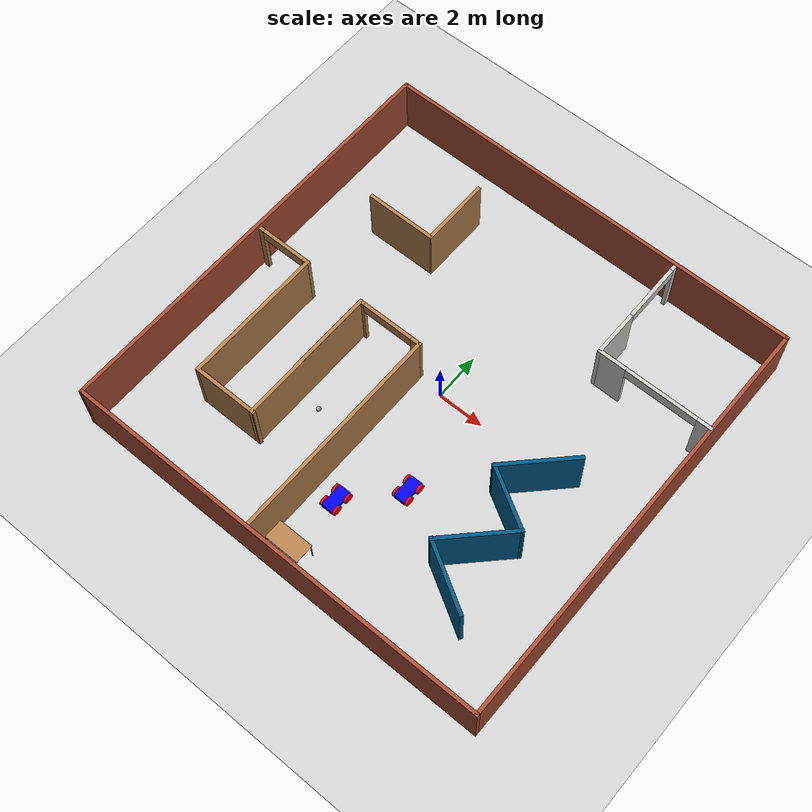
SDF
<sdf version="1.6">
 <world name="default">
  <model name="ground_plane">
   <static>1</static>
   <link name="link">
    <collision name="collision">
     <geometry><plane><normal>0 0 1</normal><size>100 100</size></plane></geometry>
     <surface>
      <contact><collide_bitmask>65535</collide_bitmask></contact>
      <friction><ode><mu>100</mu><mu2>50</mu2></ode></friction>
     </surface>
    </collision>
    <visual name="visual">
     <cast_shadows>0</cast_shadows>
     <geometry><plane><normal>0 0 1</normal><size>100 100</size></plane></geometry>
     <material>
      <script><uri>file://media/materials/scripts/gazebo.material</uri><name>Gazebo/Grey</name></script>
     </material>
    </visual>
   </link>
  </model>
  <model name="Building">
   <pose>-0.07708 -0.05076 0 0 -0 0</pose>
   <link name="Wall_0">
    <collision name="Wall_0_Collision">
     <geometry><box><size>18 0.15 2.5</size></box></geometry>
     <pose>0 0 1.25 0 -0 0</pose>
    </collision>
    <visual name="Wall_0_Visual">
     <pose>0 0 1.25 0 -0 0</pose>
     <geometry><box><size>18 0.15 2.5</size></box></geometry>
     <material>
      <script><uri>file://media/materials/scripts/gazebo.material</uri><name>Gazebo/Bricks</name></script>
      <ambient>1 1 1 1</ambient>
     </material>
     <meta><layer>0</layer></meta>
    </visual>
    <pose>-9.05 0 0 0 0 -1.5708</pose>
   </link>
   <link name="Wall_10">
    <collision name="Wall_10_Collision">
     <geometry><box><size>3.25 0.15 2.5</size></box></geometry>
     <pose>0 0 1.25 0 -0 0</pose>
    </collision>
    <visual name="Wall_10_Visual">
     <pose>0 0 1.25 0 -0 0</pose>
     <geometry><box><size>3.25 0.15 2.5</size></box></geometry>
     <material>
      <script><uri>file://media/materials/scripts/gazebo.material</uri><name>Gazebo/Grey</name></script>
      <ambient>0 0.333333 0.498039 1</ambient>
     </material>
     <meta><layer>0</layer></meta>
    </visual>
    <pose>5.19182 -4.17437 0 0 -0 0.785398</pose>
   </link>
   <link name="Wall_11">
    <collision name="Wall_11_Collision">
     <geometry><box><size>2.75 0.15 2.5</size></box></geometry>
     <pose>0 0 1.25 0 -0 0</pose>
    </collision>
    <visual name="Wall_11_Visual">
     <pose>0 0 1.25 0 -0 0</pose>
     <geometry><box><size>2.75 0.15 2.5</size></box></geometry>
     <material>
      <script><uri>file://media/materials/scripts/gazebo.material</uri><name>Gazebo/Grey</name></script>
      <ambient>0 0.333333 0.498039 1</ambient>
     </material>
     <meta><layer>0</layer></meta>
    </visual>
    <pose>5.162 -2.42836 0 0 -0 2.61799</pose>
   </link>
   <link name="Wall_12">
    <collision name="Wall_12_Collision">
     <geometry><box><size>3.25 0.15 2.5</size></box></geometry>
     <pose>0 0 1.25 0 -0 0</pose>
    </collision>
    <visual name="Wall_12_Visual">
     <pose>0 0 1.25 0 -0 0</pose>
     <geometry><box><size>3.25 0.15 2.5</size></box></geometry>
     <material>
      <script><uri>file://media/materials/scripts/gazebo.material</uri><name>Gazebo/Grey</name></script>
      <ambient>0 0.333333 0.498039 1</ambient>
     </material>
     <meta><layer>0</layer></meta>
    </visual>
    <pose>5.13218 -0.682341 0 0 -0 0.785398</pose>
   </link>
   <link name="Wall_14">
    <collision name="Wall_14_Collision">
     <geometry><box><size>9.25 0.15 2.5</size></box></geometry>
     <pose>0 0 1.25 0 -0 0</pose>
    </collision>
    <visual name="Wall_14_Visual">
     <pose>0 0 1.25 0 -0 0</pose>
     <geometry><box><size>9.25 0.15 2.5</size></box></geometry>
     <material>
      <script><uri>file://media/materials/scripts/gazebo.material</uri><name>Gazebo/Wood</name></script>
      <ambient>1 1 1 1</ambient>
     </material>
     <meta><layer>0</layer></meta>
    </visual>
    <pose>-1.03338 -4.33899 0 0 -0 1.5708</pose>
   </link>
   <link name="Wall_16">
    <pose>-2.41412 0.21101 0 0 -0 3.14159</pose>
    <visual name="Wall_16_Visual_0">
     <pose>-1.22859 0 1.25 0 -0 0</pose>
     <geometry><box><size>0.454289 0.15 2.5</size></box></geometry>
     <material>
      <script><uri>file://media/materials/scripts/gazebo.material</uri><name>Gazebo/Wood</name></script>
      <ambient>1 1 1 1</ambient>
     </material>
     <meta><layer>0</layer></meta>
    </visual>
    <collision name="Wall_16_Collision_0">
     <geometry><box><size>0.454289 0.15 2.5</size></box></geometry>
     <pose>-1.22859 0 1.25 0 -0 0</pose>
    </collision>
    <visual name="Wall_16_Visual_1">
     <pose>1.34593 0 1.25 0 -0 0</pose>
     <geometry><box><size>0.219621 0.15 2.5</size></box></geometry>
     <material>
      <script><uri>file://media/materials/scripts/gazebo.material</uri><name>Gazebo/Wood</name></script>
      <ambient>1 1 1 1</ambient>
     </material>
     <meta><layer>0</layer></meta>
    </visual>
    <collision name="Wall_16_Collision_1">
     <geometry><box><size>0.219621 0.15 2.5</size></box></geometry>
     <pose>1.34593 0 1.25 0 -0 0</pose>
    </collision>
    <visual name="Wall_16_Visual_2">
     <pose>0.117334 0 2.25 0 -0 0</pose>
     <geometry><box><size>2.23756 0.15 0.5</size></box></geometry>
     <material>
      <script><uri>file://media/materials/scripts/gazebo.material</uri><name>Gazebo/Wood</name></script>
      <ambient>1 1 1 1</ambient>
     </material>
     <meta><layer>0</layer></meta>
    </visual>
    <collision name="Wall_16_Collision_2">
     <geometry><box><size>2.23756 0.15 0.5</size></box></geometry>
     <pose>0.117334 0 2.25 0 -0 0</pose>
    </collision>
   </link>
   <link name="Wall_17">
    <collision name="Wall_17_Collision">
     <geometry><box><size>6.00024 0.15 2.5</size></box></geometry>
     <pose>0 0 1.25 0 -0 0</pose>
    </collision>
    <visual name="Wall_17_Visual">
     <pose>0 0 1.25 0 -0 0</pose>
     <geometry><box><size>6.00024 0.15 2.5</size></box></geometry>
     <material>
      <script><uri>file://media/materials/scripts/gazebo.material</uri><name>Gazebo/Wood</name></script>
      <ambient>1 1 1 1</ambient>
     </material>
     <meta><layer>0</layer></meta>
    </visual>
    <pose>-3.84835 -2.71399 0 0 0 -1.5708</pose>
   </link>
   <link name="Wall_18">
    <collision name="Wall_18_Collision">
     <geometry><box><size>2.83853 0.15 2.5</size></box></geometry>
     <pose>0 0 1.25 0 -0 0</pose>
    </collision>
    <visual name="Wall_18_Visual">
     <pose>0 0 1.25 0 -0 0</pose>
     <geometry><box><size>2.83853 0.15 2.5</size></box></geometry>
     <material>
      <script><uri>file://media/materials/scripts/gazebo.material</uri><name>Gazebo/Wood</name></script>
      <ambient>1 1 1 1</ambient>
     </material>
     <meta><layer>0</layer></meta>
    </visual>
    <pose>-5.13912 -5.63899 0 0 -0 3.14159</pose>
   </link>
   <link name="Wall_19">
    <collision name="Wall_19_Collision">
     <geometry><box><size>6 0.15 2.5</size></box></geometry>
     <pose>0 0 1.25 0 -0 0</pose>
    </collision>
    <visual name="Wall_19_Visual">
     <pose>0 0 1.25 0 -0 0</pose>
     <geometry><box><size>6 0.15 2.5</size></box></geometry>
     <material>
      <script><uri>file://media/materials/scripts/gazebo.material</uri><name>Gazebo/Wood</name></script>
      <ambient>1 1 1 1</ambient>
     </material>
     <meta><layer>0</layer></meta>
    </visual>
    <pose>-6.48338 -2.71399 0 0 -0 1.5708</pose>
   </link>
   <link name="Wall_2">
    <collision name="Wall_2_Collision">
     <geometry><box><size>18.25 0.15 2.5</size></box></geometry>
     <pose>0 0 1.25 0 -0 0</pose>
    </collision>
    <visual name="Wall_2_Visual">
     <pose>0 0 1.25 0 -0 0</pose>
     <geometry><box><size>18.25 0.15 2.5</size></box></geometry>
     <material>
      <script><uri>file://media/materials/scripts/gazebo.material</uri><name>Gazebo/Bricks</name></script>
      <ambient>1 1 1 1</ambient>
     </material>
     <meta><layer>0</layer></meta>
    </visual>
    <pose>0 8.925 0 0 -0 0</pose>
   </link>
   <link name="Wall_20">
    <pose>-7.65838 0.21101 0 0 -0 3.14159</pose>
    <visual name="Wall_20_Visual_0">
     <pose>-1.09948 0 1.25 0 -0 0</pose>
     <geometry><box><size>0.301036 0.15 2.5</size></box></geometry>
     <material>
      <script><uri>file://media/materials/scripts/gazebo.material</uri><name>Gazebo/Wood</name></script>
      <ambient>1 1 1 1</ambient>
     </material>
     <meta><layer>0</layer></meta>
    </visual>
    <collision name="Wall_20_Collision_0">
     <geometry><box><size>0.301036 0.15 2.5</size></box></geometry>
     <pose>-1.09948 0 1.25 0 -0 0</pose>
    </collision>
    <visual name="Wall_20_Visual_1">
     <pose>1.13554 0 1.25 0 -0 0</pose>
     <geometry><box><size>0.228914 0.15 2.5</size></box></geometry>
     <material>
      <script><uri>file://media/materials/scripts/gazebo.material</uri><name>Gazebo/Wood</name></script>
      <ambient>1 1 1 1</ambient>
     </material>
     <meta><layer>0</layer></meta>
    </visual>
    <collision name="Wall_20_Collision_1">
     <geometry><box><size>0.228914 0.15 2.5</size></box></geometry>
     <pose>1.13554 0 1.25 0 -0 0</pose>
    </collision>
    <visual name="Wall_20_Visual_2">
     <pose>0.036061 0 2.25 0 -0 0</pose>
     <geometry><box><size>1.97005 0.15 0.5</size></box></geometry>
     <material>
      <script><uri>file://media/materials/scripts/gazebo.material</uri><name>Gazebo/Wood</name></script>
      <ambient>1 1 1 1</ambient>
     </material>
     <meta><layer>0</layer></meta>
    </visual>
    <collision name="Wall_20_Collision_2">
     <geometry><box><size>1.97005 0.15 0.5</size></box></geometry>
     <pose>0.036061 0 2.25 0 -0 0</pose>
    </collision>
   </link>
   <link name="Wall_22">
    <collision name="Wall_22_Collision">
     <geometry><box><size>3 0.15 2.5</size></box></geometry>
     <pose>0 0 1.25 0 -0 0</pose>
    </collision>
    <visual name="Wall_22_Visual">
     <pose>0 0 1.25 0 -0 0</pose>
     <geometry><box><size>3 0.15 2.5</size></box></geometry>
     <material>
      <script><uri>file://media/materials/scripts/gazebo.material</uri><name>Gazebo/Wood</name></script>
      <ambient>1 1 1 1</ambient>
     </material>
     <meta><layer>0</layer></meta>
    </visual>
    <pose>-5.14909 4.00511 0 0 -0 3.14159</pose>
   </link>
   <link name="Wall_24">
    <collision name="Wall_24_Collision">
     <geometry><box><size>3 0.15 2.5</size></box></geometry>
     <pose>0 0 1.25 0 -0 0</pose>
    </collision>
    <visual name="Wall_24_Visual">
     <pose>0 0 1.25 0 -0 0</pose>
     <geometry><box><size>3 0.15 2.5</size></box></geometry>
     <material>
      <script><uri>file://media/materials/scripts/gazebo.material</uri><name>Gazebo/Wood</name></script>
      <ambient>1 1 1 1</ambient>
     </material>
     <meta><layer>0</layer></meta>
    </visual>
    <pose>-3.67058 5.43011 0 0 -0 1.5708</pose>
   </link>
   <link name="Wall_3">
    <collision name="Wall_3_Collision">
     <geometry><box><size>18 0.15 2.5</size></box></geometry>
     <pose>0 0 1.25 0 -0 0</pose>
    </collision>
    <visual name="Wall_3_Visual">
     <pose>0 0 1.25 0 -0 0</pose>
     <geometry><box><size>18 0.15 2.5</size></box></geometry>
     <material>
      <script><uri>file://media/materials/scripts/gazebo.material</uri><name>Gazebo/Bricks</name></script>
      <ambient>1 1 1 1</ambient>
     </material>
     <meta><layer>0</layer></meta>
    </visual>
    <pose>9.05 0 0 0 0 -1.5708</pose>
   </link>
   <link name="Wall_4">
    <collision name="Wall_4_Collision">
     <geometry><box><size>18.25 0.15 2.5</size></box></geometry>
     <pose>0 0 1.25 0 -0 0</pose>
    </collision>
    <visual name="Wall_4_Visual">
     <pose>0 0 1.25 0 -0 0</pose>
     <geometry><box><size>18.25 0.15 2.5</size></box></geometry>
     <material>
      <script><uri>file://media/materials/scripts/gazebo.material</uri><name>Gazebo/Bricks</name></script>
      <ambient>1 1 1 1</ambient>
     </material>
     <meta><layer>0</layer></meta>
    </visual>
    <pose>0 -8.925 0 0 -0 3.14159</pose>
   </link>
   <link name="Wall_6">
    <pose>4.15636 6.46683 0 0 0 -1.5708</pose>
    <visual name="Wall_6_Visual_0">
     <pose>-2.25486 0 1.25 0 -0 0</pose>
     <geometry><box><size>0.240278 0.15 2.5</size></box></geometry>
     <material>
      <script><uri>file://media/materials/scripts/gazebo.material</uri><name>Gazebo/CeilingTiled</name></script>
      <ambient>1 1 1 1</ambient>
     </material>
     <meta><layer>0</layer></meta>
    </visual>
    <collision name="Wall_6_Collision_0">
     <geometry><box><size>0.240278 0.15 2.5</size></box></geometry>
     <pose>-2.25486 0 1.25 0 -0 0</pose>
    </collision>
    <visual name="Wall_6_Visual_1">
     <pose>1.37268 0 1.25 0 -0 0</pose>
     <geometry><box><size>2.00465 0.15 2.5</size></box></geometry>
     <material>
      <script><uri>file://media/materials/scripts/gazebo.material</uri><name>Gazebo/CeilingTiled</name></script>
      <ambient>1 1 1 1</ambient>
     </material>
     <meta><layer>0</layer></meta>
    </visual>
    <collision name="Wall_6_Collision_1">
     <geometry><box><size>2.00465 0.15 2.5</size></box></geometry>
     <pose>1.37268 0 1.25 0 -0 0</pose>
    </collision>
    <visual name="Wall_6_Visual_2">
     <pose>-0.882184 0 2.25 0 -0 0</pose>
     <geometry><box><size>2.50508 0.15 0.5</size></box></geometry>
     <material>
      <script><uri>file://media/materials/scripts/gazebo.material</uri><name>Gazebo/CeilingTiled</name></script>
      <ambient>1 1 1 1</ambient>
     </material>
     <meta><layer>0</layer></meta>
    </visual>
    <collision name="Wall_6_Collision_2">
     <geometry><box><size>2.50508 0.15 0.5</size></box></geometry>
     <pose>-0.882184 0 2.25 0 -0 0</pose>
    </collision>
   </link>
   <link name="Wall_7">
    <pose>6.58136 4.16684 0 0 -0 0</pose>
    <visual name="Wall_7_Visual_0">
     <pose>-1.87159 0 1.25 0 -0 0</pose>
     <geometry><box><size>1.25683 0.15 2.5</size></box></geometry>
     <material>
      <script><uri>file://media/materials/scripts/gazebo.material</uri><name>Gazebo/CeilingTiled</name></script>
      <ambient>1 1 1 1</ambient>
     </material>
     <meta><layer>0</layer></meta>
    </visual>
    <collision name="Wall_7_Collision_0">
     <geometry><box><size>1.25683 0.15 2.5</size></box></geometry>
     <pose>-1.87159 0 1.25 0 -0 0</pose>
    </collision>
    <visual name="Wall_7_Visual_1">
     <pose>2.17521 0 1.25 0 -0 0</pose>
     <geometry><box><size>0.649571 0.15 2.5</size></box></geometry>
     <material>
      <script><uri>file://media/materials/scripts/gazebo.material</uri><name>Gazebo/CeilingTiled</name></script>
      <ambient>1 1 1 1</ambient>
     </material>
     <meta><layer>0</layer></meta>
    </visual>
    <collision name="Wall_7_Collision_1">
     <geometry><box><size>0.649571 0.15 2.5</size></box></geometry>
     <pose>2.17521 0 1.25 0 -0 0</pose>
    </collision>
    <visual name="Wall_7_Visual_2">
     <pose>0.303627 0 2.25 0 -0 0</pose>
     <geometry><box><size>3.0936 0.15 0.5</size></box></geometry>
     <material>
      <script><uri>file://media/materials/scripts/gazebo.material</uri><name>Gazebo/CeilingTiled</name></script>
      <ambient>1 1 1 1</ambient>
     </material>
     <meta><layer>0</layer></meta>
    </visual>
    <collision name="Wall_7_Collision_2">
     <geometry><box><size>3.0936 0.15 0.5</size></box></geometry>
     <pose>0.303627 0 2.25 0 -0 0</pose>
    </collision>
   </link>
   <link name="Wall_9">
    <collision name="Wall_9_Collision">
     <geometry><box><size>3 0.15 2.5</size></box></geometry>
     <pose>0 0 1.25 0 -0 0</pose>
    </collision>
    <visual name="Wall_9_Visual">
     <pose>0 0 1.25 0 -0 0</pose>
     <geometry><box><size>3 0.15 2.5</size></box></geometry>
     <material>
      <script><uri>file://media/materials/scripts/gazebo.material</uri><name>Gazebo/Grey</name></script>
      <ambient>0 0.333333 0.498039 1</ambient>
     </material>
     <meta><layer>0</layer></meta>
    </visual>
    <pose>5.32989 -5.98289 0 0 -0 2.61799</pose>
   </link>
   <static>1</static>
  </model>
  <model name="robot">
   <link name="link_0">
    <inertial>
     <mass>1</mass>
     <inertia>
      <ixx>0.166667</ixx>
      <ixy>0</ixy>
      <ixz>0</ixz>
      <iyy>0.166667</iyy>
      <iyz>0</iyz>
      <izz>0.166667</izz>
     </inertia>
    </inertial>
    <visual name="visual">
     <geometry><box><size>1 0.5 0.2</size></box></geometry>
     <material>
      <lighting>1</lighting>
      <script><uri>file://media/materials/scripts/gazebo.material</uri><name>Gazebo/Grey</name></script>
      <shader type="pixel"><normal_map>__default__</normal_map></shader>
      <ambient>0 0 1 1</ambient>
      <diffuse>0 0 1 1</diffuse>
      <specular>0 0 1 1</specular>
      <emissive>0 0 0 1</emissive>
     </material>
    </visual>
    <collision name="collision">
     <geometry><box><size>1 0.5 0.2</size></box></geometry>
     <surface>
      <friction>
       <ode><mu>1</mu><mu2>1</mu2><fdir1>0 0 0</fdir1><slip1>0</slip1><slip2>0</slip2></ode>
       <torsional>
        <coefficient>1</coefficient>
        <patch_radius>0</patch_radius>
        <surface_radius>0</surface_radius>
        <use_patch_radius>1</use_patch_radius>
        <ode><slip>0</slip></ode>
       </torsional>
      </friction>
      <bounce><restitution_coefficient>0</restitution_coefficient><threshold>1e+06</threshold></bounce>
      <contact>
       <collide_without_contact>0</collide_without_contact>
       <collide_without_contact_bitmask>1</collide_without_contact_bitmask>
       <collide_bitmask>1</collide_bitmask>
       <ode>
        <soft_cfm>0</soft_cfm>
        <soft_erp>0.2</soft_erp>
        <kp>1e+13</kp>
        <kd>1</kd>
        <max_vel>0.01</max_vel>
        <min_depth>0</min_depth>
       </ode>
       <bullet>
        <split_impulse>1</split_impulse>
        <split_impulse_penetration_threshold>-0.01</split_impulse_penetration_threshold>
        <soft_cfm>0</soft_cfm>
        <soft_erp>0.2</soft_erp>
        <kp>1e+13</kp>
        <kd>1</kd>
       </bullet>
      </contact>
     </surface>
    </collision>
   </link>
   <link name="link_1">
    <inertial>
     <mass>1</mass>
     <inertia><ixx>0.145833</ixx><ixy>0</ixy><ixz>0</ixz><iyy>0.145833</iyy><iyz>0</iyz><izz>0.125</izz></inertia>
    </inertial>
    <pose>-0.3 -0.300019 0 1.5707 -0 0</pose>
    <visual name="visual">
     <geometry><cylinder><radius>0.2</radius><length>0.1</length></cylinder></geometry>
     <material>
      <lighting>1</lighting>
      <script><uri>file://media/materials/scripts/gazebo.material</uri><name>Gazebo/Grey</name></script>
      <shader type="pixel"><normal_map>__default__</normal_map></shader>
      <ambient>1 0.3 0 1</ambient>
      <diffuse>1 0 0 1</diffuse>
      <specular>1 0 0 1</specular>
      <emissive>0 0 0 1</emissive>
     </material>
    </visual>
    <collision name="collision">
     <geometry><cylinder><radius>0.2</radius><length>0.1</length></cylinder></geometry>
     <surface>
      <friction>
       <ode><mu>1</mu><mu2>1</mu2><fdir1>0 0 0</fdir1><slip1>0</slip1><slip2>0</slip2></ode>
       <torsional>
        <coefficient>1</coefficient>
        <patch_radius>0</patch_radius>
        <surface_radius>0</surface_radius>
        <use_patch_radius>1</use_patch_radius>
        <ode><slip>0</slip></ode>
       </torsional>
      </friction>
      <bounce><restitution_coefficient>0</restitution_coefficient><threshold>1e+06</threshold></bounce>
      <contact>
       <collide_without_contact>0</collide_without_contact>
       <collide_without_contact_bitmask>1</collide_without_contact_bitmask>
       <collide_bitmask>1</collide_bitmask>
       <ode>
        <soft_cfm>0</soft_cfm>
        <soft_erp>0.2</soft_erp>
        <kp>1e+13</kp>
        <kd>1</kd>
        <max_vel>0.01</max_vel>
        <min_depth>0</min_depth>
       </ode>
       <bullet>
        <split_impulse>1</split_impulse>
        <split_impulse_penetration_threshold>-0.01</split_impulse_penetration_threshold>
        <soft_cfm>0</soft_cfm>
        <soft_erp>0.2</soft_erp>
        <kp>1e+13</kp>
        <kd>1</kd>
       </bullet>
      </contact>
     </surface>
    </collision>
   </link>
   <link name="link_1_clone">
    <inertial>
     <mass>1</mass>
     <inertia><ixx>0.145833</ixx><ixy>0</ixy><ixz>0</ixz><iyy>0.145833</iyy><iyz>0</iyz><izz>0.125</izz></inertia>
    </inertial>
    <pose>-0.3 0.300019 0 1.5707 -0 0</pose>
    <visual name="visual">
     <geometry><cylinder><radius>0.2</radius><length>0.1</length></cylinder></geometry>
     <material>
      <lighting>1</lighting>
      <script><uri>file://media/materials/scripts/gazebo.material</uri><name>Gazebo/Grey</name></script>
      <shader type="pixel"><normal_map>__default__</normal_map></shader>
      <ambient>1 0.3 0 1</ambient>
      <diffuse>1 0 0 1</diffuse>
      <specular>1 0 0 1</specular>
      <emissive>0 0 0 1</emissive>
     </material>
    </visual>
    <collision name="collision">
     <geometry><cylinder><radius>0.2</radius><length>0.1</length></cylinder></geometry>
     <surface>
      <friction>
       <ode><mu>1</mu><mu2>1</mu2><fdir1>0 0 0</fdir1><slip1>0</slip1><slip2>0</slip2></ode>
       <torsional>
        <coefficient>1</coefficient>
        <patch_radius>0</patch_radius>
        <surface_radius>0</surface_radius>
        <use_patch_radius>1</use_patch_radius>
        <ode><slip>0</slip></ode>
       </torsional>
      </friction>
      <bounce><restitution_coefficient>0</restitution_coefficient><threshold>1e+06</threshold></bounce>
      <contact>
       <collide_without_contact>0</collide_without_contact>
       <collide_without_contact_bitmask>1</collide_without_contact_bitmask>
       <collide_bitmask>1</collide_bitmask>
       <ode>
        <soft_cfm>0</soft_cfm>
        <soft_erp>0.2</soft_erp>
        <kp>1e+13</kp>
        <kd>1</kd>
        <max_vel>0.01</max_vel>
        <min_depth>0</min_depth>
       </ode>
       <bullet>
        <split_impulse>1</split_impulse>
        <split_impulse_penetration_threshold>-0.01</split_impulse_penetration_threshold>
        <soft_cfm>0</soft_cfm>
        <soft_erp>0.2</soft_erp>
        <kp>1e+13</kp>
        <kd>1</kd>
       </bullet>
      </contact>
     </surface>
    </collision>
   </link>
   <link name="link_1_clone_0">
    <inertial>
     <mass>1</mass>
     <inertia><ixx>0.145833</ixx><ixy>0</ixy><ixz>0</ixz><iyy>0.145833</iyy><iyz>0</iyz><izz>0.125</izz></inertia>
    </inertial>
    <pose>0.3 0.300019 0 1.5707 -0 0</pose>
    <visual name="visual">
     <geometry><cylinder><radius>0.2</radius><length>0.1</length></cylinder></geometry>
     <material>
      <lighting>1</lighting>
      <script><uri>file://media/materials/scripts/gazebo.material</uri><name>Gazebo/Grey</name></script>
      <shader type="pixel"><normal_map>__default__</normal_map></shader>
      <ambient>1 0.3 0 1</ambient>
      <diffuse>1 0 0 1</diffuse>
      <specular>1 0 0 1</specular>
      <emissive>0 0 0 1</emissive>
     </material>
    </visual>
    <collision name="collision">
     <geometry><cylinder><radius>0.2</radius><length>0.1</length></cylinder></geometry>
     <surface>
      <friction>
       <ode><mu>1</mu><mu2>1</mu2><fdir1>0 0 0</fdir1><slip1>0</slip1><slip2>0</slip2></ode>
       <torsional>
        <coefficient>1</coefficient>
        <patch_radius>0</patch_radius>
        <surface_radius>0</surface_radius>
        <use_patch_radius>1</use_patch_radius>
        <ode><slip>0</slip></ode>
       </torsional>
      </friction>
      <bounce><restitution_coefficient>0</restitution_coefficient><threshold>1e+06</threshold></bounce>
      <contact>
       <collide_without_contact>0</collide_without_contact>
       <collide_without_contact_bitmask>1</collide_without_contact_bitmask>
       <collide_bitmask>1</collide_bitmask>
       <ode>
        <soft_cfm>0</soft_cfm>
        <soft_erp>0.2</soft_erp>
        <kp>1e+13</kp>
        <kd>1</kd>
        <max_vel>0.01</max_vel>
        <min_depth>0</min_depth>
       </ode>
       <bullet>
        <split_impulse>1</split_impulse>
        <split_impulse_penetration_threshold>-0.01</split_impulse_penetration_threshold>
        <soft_cfm>0</soft_cfm>
        <soft_erp>0.2</soft_erp>
        <kp>1e+13</kp>
        <kd>1</kd>
       </bullet>
      </contact>
     </surface>
    </collision>
   </link>
   <link name="link_1_clone_1">
    <inertial>
     <mass>1</mass>
     <inertia><ixx>0.145833</ixx><ixy>0</ixy><ixz>0</ixz><iyy>0.145833</iyy><iyz>0</iyz><izz>0.125</izz></inertia>
    </inertial>
    <pose>0.3 -0.300019 0 1.5707 -0 0</pose>
    <visual name="visual">
     <geometry><cylinder><radius>0.2</radius><length>0.1</length></cylinder></geometry>
     <material>
      <lighting>1</lighting>
      <script><uri>file://media/materials/scripts/gazebo.material</uri><name>Gazebo/Grey</name></script>
      <shader type="pixel"><normal_map>__default__</normal_map></shader>
      <ambient>1 0.3 0 1</ambient>
      <diffuse>1 0 0 1</diffuse>
      <specular>1 0 0 1</specular>
      <emissive>0 0 0 1</emissive>
     </material>
    </visual>
    <collision name="collision">
     <geometry><cylinder><radius>0.2</radius><length>0.1</length></cylinder></geometry>
     <surface>
      <friction>
       <ode><mu>1</mu><mu2>1</mu2><fdir1>0 0 0</fdir1><slip1>0</slip1><slip2>0</slip2></ode>
       <torsional>
        <coefficient>1</coefficient>
        <patch_radius>0</patch_radius>
        <surface_radius>0</surface_radius>
        <use_patch_radius>1</use_patch_radius>
        <ode><slip>0</slip></ode>
       </torsional>
      </friction>
      <bounce><restitution_coefficient>0</restitution_coefficient><threshold>1e+06</threshold></bounce>
      <contact>
       <collide_without_contact>0</collide_without_contact>
       <collide_without_contact_bitmask>1</collide_without_contact_bitmask>
       <collide_bitmask>1</collide_bitmask>
       <ode>
        <soft_cfm>0</soft_cfm>
        <soft_erp>0.2</soft_erp>
        <kp>1e+13</kp>
        <kd>1</kd>
        <max_vel>0.01</max_vel>
        <min_depth>0</min_depth>
       </ode>
       <bullet>
        <split_impulse>1</split_impulse>
        <split_impulse_penetration_threshold>-0.01</split_impulse_penetration_threshold>
        <soft_cfm>0</soft_cfm>
        <soft_erp>0.2</soft_erp>
        <kp>1e+13</kp>
        <kd>1</kd>
       </bullet>
      </contact>
     </surface>
    </collision>
   </link>
   <joint name="link_0_JOINT_0" type="revolute">
    <parent>link_0</parent>
    <child>link_1</child>
    <axis>
     <xyz>1 0 0</xyz>
     <limit>
      <lower>-1.79769e+308</lower>
      <upper>1.79769e+308</upper>
      <effort>-1</effort>
      <velocity>-1</velocity>
     </limit>
     <dynamics>
      <spring_reference>0</spring_reference>
      <spring_stiffness>0</spring_stiffness>
      <damping>0</damping>
     </dynamics>
     <use_parent_model_frame>0</use_parent_model_frame>
    </axis>
    <physics>
     <ode><limit><cfm>0</cfm><erp>0.2</erp></limit><suspension><cfm>0</cfm><erp>0.2</erp></suspension></ode>
    </physics>
   </joint>
   <joint name="link_0_JOINT_1" type="revolute">
    <parent>link_0</parent>
    <child>link_1_clone_0</child>
    <axis>
     <xyz>1 0 0</xyz>
     <limit>
      <lower>-1.79769e+308</lower>
      <upper>1.79769e+308</upper>
      <effort>-1</effort>
      <velocity>-1</velocity>
     </limit>
     <dynamics>
      <spring_reference>0</spring_reference>
      <spring_stiffness>0</spring_stiffness>
      <damping>0</damping>
     </dynamics>
     <use_parent_model_frame>0</use_parent_model_frame>
    </axis>
    <physics>
     <ode><limit><cfm>0</cfm><erp>0.2</erp></limit><suspension><cfm>0</cfm><erp>0.2</erp></suspension></ode>
    </physics>
   </joint>
   <joint name="link_0_JOINT_2" type="revolute">
    <parent>link_0</parent>
    <child>link_1_clone</child>
    <axis>
     <xyz>1 0 0</xyz>
     <limit>
      <lower>-1.79769e+308</lower>
      <upper>1.79769e+308</upper>
      <effort>-1</effort>
      <velocity>-1</velocity>
     </limit>
     <dynamics>
      <spring_reference>0</spring_reference>
      <spring_stiffness>0</spring_stiffness>
      <damping>0</damping>
     </dynamics>
     <use_parent_model_frame>0</use_parent_model_frame>
    </axis>
    <physics>
     <ode><limit><cfm>0</cfm><erp>0.2</erp></limit><suspension><cfm>0</cfm><erp>0.2</erp></suspension></ode>
    </physics>
   </joint>
   <joint name="link_0_JOINT_3" type="revolute">
    <parent>link_0</parent>
    <child>link_1_clone_1</child>
    <axis>
     <xyz>1 0 0</xyz>
     <limit>
      <lower>-1.79769e+308</lower>
      <upper>1.79769e+308</upper>
      <effort>-1</effort>
      <velocity>-1</velocity>
     </limit>
     <dynamics>
      <spring_reference>0</spring_reference>
      <spring_stiffness>0</spring_stiffness>
      <damping>0</damping>
     </dynamics>
     <use_parent_model_frame>0</use_parent_model_frame>
    </axis>
    <physics>
     <ode><limit><cfm>0</cfm><erp>0.2</erp></limit><suspension><cfm>0</cfm><erp>0.2</erp></suspension></ode>
    </physics>
   </joint>
   <static>0</static>
   <pose>-0.132377 -5.68418 0.2 0 -2e-06 -1.57541</pose>
  </model>
  <model name="robot_0">
   <link name="link_0">
    <inertial>
     <mass>1</mass>
     <inertia>
      <ixx>0.166667</ixx>
      <ixy>0</ixy>
      <ixz>0</ixz>
      <iyy>0.166667</iyy>
      <iyz>0</iyz>
      <izz>0.166667</izz>
     </inertia>
    </inertial>
    <visual name="visual">
     <geometry><box><size>1 0.5 0.2</size></box></geometry>
     <material>
      <lighting>1</lighting>
      <script><uri>file://media/materials/scripts/gazebo.material</uri><name>Gazebo/Grey</name></script>
      <shader type="pixel"><normal_map>__default__</normal_map></shader>
      <ambient>0 0 1 1</ambient>
      <diffuse>0 0 1 1</diffuse>
      <specular>0 0 1 1</specular>
      <emissive>0 0 0 1</emissive>
     </material>
    </visual>
    <collision name="collision">
     <geometry><box><size>1 0.5 0.2</size></box></geometry>
     <surface>
      <friction>
       <ode><mu>1</mu><mu2>1</mu2><fdir1>0 0 0</fdir1><slip1>0</slip1><slip2>0</slip2></ode>
       <torsional>
        <coefficient>1</coefficient>
        <patch_radius>0</patch_radius>
        <surface_radius>0</surface_radius>
        <use_patch_radius>1</use_patch_radius>
        <ode><slip>0</slip></ode>
       </torsional>
      </friction>
      <bounce><restitution_coefficient>0</restitution_coefficient><threshold>1e+06</threshold></bounce>
      <contact>
       <collide_without_contact>0</collide_without_contact>
       <collide_without_contact_bitmask>1</collide_without_contact_bitmask>
       <collide_bitmask>1</collide_bitmask>
       <ode>
        <soft_cfm>0</soft_cfm>
        <soft_erp>0.2</soft_erp>
        <kp>1e+13</kp>
        <kd>1</kd>
        <max_vel>0.01</max_vel>
        <min_depth>0</min_depth>
       </ode>
       <bullet>
        <split_impulse>1</split_impulse>
        <split_impulse_penetration_threshold>-0.01</split_impulse_penetration_threshold>
        <soft_cfm>0</soft_cfm>
        <soft_erp>0.2</soft_erp>
        <kp>1e+13</kp>
        <kd>1</kd>
       </bullet>
      </contact>
     </surface>
    </collision>
   </link>
   <link name="link_1">
    <inertial>
     <mass>1</mass>
     <inertia><ixx>0.145833</ixx><ixy>0</ixy><ixz>0</ixz><iyy>0.145833</iyy><iyz>0</iyz><izz>0.125</izz></inertia>
    </inertial>
    <pose>-0.3 -0.300019 0 1.5707 -0 0</pose>
    <visual name="visual">
     <geometry><cylinder><radius>0.2</radius><length>0.1</length></cylinder></geometry>
     <material>
      <lighting>1</lighting>
      <script><uri>file://media/materials/scripts/gazebo.material</uri><name>Gazebo/Grey</name></script>
      <shader type="pixel"><normal_map>__default__</normal_map></shader>
      <ambient>1 0.3 0 1</ambient>
      <diffuse>1 0 0 1</diffuse>
      <specular>1 0 0 1</specular>
      <emissive>0 0 0 1</emissive>
     </material>
    </visual>
    <collision name="collision">
     <geometry><cylinder><radius>0.2</radius><length>0.1</length></cylinder></geometry>
     <surface>
      <friction>
       <ode><mu>1</mu><mu2>1</mu2><fdir1>0 0 0</fdir1><slip1>0</slip1><slip2>0</slip2></ode>
       <torsional>
        <coefficient>1</coefficient>
        <patch_radius>0</patch_radius>
        <surface_radius>0</surface_radius>
        <use_patch_radius>1</use_patch_radius>
        <ode><slip>0</slip></ode>
       </torsional>
      </friction>
      <bounce><restitution_coefficient>0</restitution_coefficient><threshold>1e+06</threshold></bounce>
      <contact>
       <collide_without_contact>0</collide_without_contact>
       <collide_without_contact_bitmask>1</collide_without_contact_bitmask>
       <collide_bitmask>1</collide_bitmask>
       <ode>
        <soft_cfm>0</soft_cfm>
        <soft_erp>0.2</soft_erp>
        <kp>1e+13</kp>
        <kd>1</kd>
        <max_vel>0.01</max_vel>
        <min_depth>0</min_depth>
       </ode>
       <bullet>
        <split_impulse>1</split_impulse>
        <split_impulse_penetration_threshold>-0.01</split_impulse_penetration_threshold>
        <soft_cfm>0</soft_cfm>
        <soft_erp>0.2</soft_erp>
        <kp>1e+13</kp>
        <kd>1</kd>
       </bullet>
      </contact>
     </surface>
    </collision>
   </link>
   <link name="link_1_clone">
    <inertial>
     <mass>1</mass>
     <inertia><ixx>0.145833</ixx><ixy>0</ixy><ixz>0</ixz><iyy>0.145833</iyy><iyz>0</iyz><izz>0.125</izz></inertia>
    </inertial>
    <pose>-0.3 0.300019 0 1.5707 -0 0</pose>
    <visual name="visual">
     <geometry><cylinder><radius>0.2</radius><length>0.1</length></cylinder></geometry>
     <material>
      <lighting>1</lighting>
      <script><uri>file://media/materials/scripts/gazebo.material</uri><name>Gazebo/Grey</name></script>
      <shader type="pixel"><normal_map>__default__</normal_map></shader>
      <ambient>1 0.3 0 1</ambient>
      <diffuse>1 0 0 1</diffuse>
      <specular>1 0 0 1</specular>
      <emissive>0 0 0 1</emissive>
     </material>
    </visual>
    <collision name="collision">
     <geometry><cylinder><radius>0.2</radius><length>0.1</length></cylinder></geometry>
     <surface>
      <friction>
       <ode><mu>1</mu><mu2>1</mu2><fdir1>0 0 0</fdir1><slip1>0</slip1><slip2>0</slip2></ode>
       <torsional>
        <coefficient>1</coefficient>
        <patch_radius>0</patch_radius>
        <surface_radius>0</surface_radius>
        <use_patch_radius>1</use_patch_radius>
        <ode><slip>0</slip></ode>
       </torsional>
      </friction>
      <bounce><restitution_coefficient>0</restitution_coefficient><threshold>1e+06</threshold></bounce>
      <contact>
       <collide_without_contact>0</collide_without_contact>
       <collide_without_contact_bitmask>1</collide_without_contact_bitmask>
       <collide_bitmask>1</collide_bitmask>
       <ode>
        <soft_cfm>0</soft_cfm>
        <soft_erp>0.2</soft_erp>
        <kp>1e+13</kp>
        <kd>1</kd>
        <max_vel>0.01</max_vel>
        <min_depth>0</min_depth>
       </ode>
       <bullet>
        <split_impulse>1</split_impulse>
        <split_impulse_penetration_threshold>-0.01</split_impulse_penetration_threshold>
        <soft_cfm>0</soft_cfm>
        <soft_erp>0.2</soft_erp>
        <kp>1e+13</kp>
        <kd>1</kd>
       </bullet>
      </contact>
     </surface>
    </collision>
   </link>
   <link name="link_1_clone_0">
    <inertial>
     <mass>1</mass>
     <inertia><ixx>0.145833</ixx><ixy>0</ixy><ixz>0</ixz><iyy>0.145833</iyy><iyz>0</iyz><izz>0.125</izz></inertia>
    </inertial>
    <pose>0.3 0.300019 0 1.5707 -0 0</pose>
    <visual name="visual">
     <geometry><cylinder><radius>0.2</radius><length>0.1</length></cylinder></geometry>
     <material>
      <lighting>1</lighting>
      <script><uri>file://media/materials/scripts/gazebo.material</uri><name>Gazebo/Grey</name></script>
      <shader type="pixel"><normal_map>__default__</normal_map></shader>
      <ambient>1 0.3 0 1</ambient>
      <diffuse>1 0 0 1</diffuse>
      <specular>1 0 0 1</specular>
      <emissive>0 0 0 1</emissive>
     </material>
    </visual>
    <collision name="collision">
     <geometry><cylinder><radius>0.2</radius><length>0.1</length></cylinder></geometry>
     <surface>
      <friction>
       <ode><mu>1</mu><mu2>1</mu2><fdir1>0 0 0</fdir1><slip1>0</slip1><slip2>0</slip2></ode>
       <torsional>
        <coefficient>1</coefficient>
        <patch_radius>0</patch_radius>
        <surface_radius>0</surface_radius>
        <use_patch_radius>1</use_patch_radius>
        <ode><slip>0</slip></ode>
       </torsional>
      </friction>
      <bounce><restitution_coefficient>0</restitution_coefficient><threshold>1e+06</threshold></bounce>
      <contact>
       <collide_without_contact>0</collide_without_contact>
       <collide_without_contact_bitmask>1</collide_without_contact_bitmask>
       <collide_bitmask>1</collide_bitmask>
       <ode>
        <soft_cfm>0</soft_cfm>
        <soft_erp>0.2</soft_erp>
        <kp>1e+13</kp>
        <kd>1</kd>
        <max_vel>0.01</max_vel>
        <min_depth>0</min_depth>
       </ode>
       <bullet>
        <split_impulse>1</split_impulse>
        <split_impulse_penetration_threshold>-0.01</split_impulse_penetration_threshold>
        <soft_cfm>0</soft_cfm>
        <soft_erp>0.2</soft_erp>
        <kp>1e+13</kp>
        <kd>1</kd>
       </bullet>
      </contact>
     </surface>
    </collision>
   </link>
   <link name="link_1_clone_1">
    <inertial>
     <mass>1</mass>
     <inertia><ixx>0.145833</ixx><ixy>0</ixy><ixz>0</ixz><iyy>0.145833</iyy><iyz>0</iyz><izz>0.125</izz></inertia>
    </inertial>
    <pose>0.3 -0.300019 0 1.5707 -0 0</pose>
    <visual name="visual">
     <geometry><cylinder><radius>0.2</radius><length>0.1</length></cylinder></geometry>
     <material>
      <lighting>1</lighting>
      <script><uri>file://media/materials/scripts/gazebo.material</uri><name>Gazebo/Grey</name></script>
      <shader type="pixel"><normal_map>__default__</normal_map></shader>
      <ambient>1 0.3 0 1</ambient>
      <diffuse>1 0 0 1</diffuse>
      <specular>1 0 0 1</specular>
      <emissive>0 0 0 1</emissive>
     </material>
    </visual>
    <collision name="collision">
     <geometry><cylinder><radius>0.2</radius><length>0.1</length></cylinder></geometry>
     <surface>
      <friction>
       <ode><mu>1</mu><mu2>1</mu2><fdir1>0 0 0</fdir1><slip1>0</slip1><slip2>0</slip2></ode>
       <torsional>
        <coefficient>1</coefficient>
        <patch_radius>0</patch_radius>
        <surface_radius>0</surface_radius>
        <use_patch_radius>1</use_patch_radius>
        <ode><slip>0</slip></ode>
       </torsional>
      </friction>
      <bounce><restitution_coefficient>0</restitution_coefficient><threshold>1e+06</threshold></bounce>
      <contact>
       <collide_without_contact>0</collide_without_contact>
       <collide_without_contact_bitmask>1</collide_without_contact_bitmask>
       <collide_bitmask>1</collide_bitmask>
       <ode>
        <soft_cfm>0</soft_cfm>
        <soft_erp>0.2</soft_erp>
        <kp>1e+13</kp>
        <kd>1</kd>
        <max_vel>0.01</max_vel>
        <min_depth>0</min_depth>
       </ode>
       <bullet>
        <split_impulse>1</split_impulse>
        <split_impulse_penetration_threshold>-0.01</split_impulse_penetration_threshold>
        <soft_cfm>0</soft_cfm>
        <soft_erp>0.2</soft_erp>
        <kp>1e+13</kp>
        <kd>1</kd>
       </bullet>
      </contact>
     </surface>
    </collision>
   </link>
   <joint name="link_0_JOINT_0" type="revolute">
    <parent>link_0</parent>
    <child>link_1</child>
    <axis>
     <xyz>1 0 0</xyz>
     <limit>
      <lower>-1.79769e+308</lower>
      <upper>1.79769e+308</upper>
      <effort>-1</effort>
      <velocity>-1</velocity>
     </limit>
     <dynamics>
      <spring_reference>0</spring_reference>
      <spring_stiffness>0</spring_stiffness>
      <damping>0</damping>
     </dynamics>
     <use_parent_model_frame>0</use_parent_model_frame>
    </axis>
    <physics>
     <ode><limit><cfm>0</cfm><erp>0.2</erp></limit><suspension><cfm>0</cfm><erp>0.2</erp></suspension></ode>
    </physics>
   </joint>
   <joint name="link_0_JOINT_1" type="revolute">
    <parent>link_0</parent>
    <child>link_1_clone_0</child>
    <axis>
     <xyz>1 0 0</xyz>
     <limit>
      <lower>-1.79769e+308</lower>
      <upper>1.79769e+308</upper>
      <effort>-1</effort>
      <velocity>-1</velocity>
     </limit>
     <dynamics>
      <spring_reference>0</spring_reference>
      <spring_stiffness>0</spring_stiffness>
      <damping>0</damping>
     </dynamics>
     <use_parent_model_frame>0</use_parent_model_frame>
    </axis>
    <physics>
     <ode><limit><cfm>0</cfm><erp>0.2</erp></limit><suspension><cfm>0</cfm><erp>0.2</erp></suspension></ode>
    </physics>
   </joint>
   <joint name="link_0_JOINT_2" type="revolute">
    <parent>link_0</parent>
    <child>link_1_clone</child>
    <axis>
     <xyz>1 0 0</xyz>
     <limit>
      <lower>-1.79769e+308</lower>
      <upper>1.79769e+308</upper>
      <effort>-1</effort>
      <velocity>-1</velocity>
     </limit>
     <dynamics>
      <spring_reference>0</spring_reference>
      <spring_stiffness>0</spring_stiffness>
      <damping>0</damping>
     </dynamics>
     <use_parent_model_frame>0</use_parent_model_frame>
    </axis>
    <physics>
     <ode><limit><cfm>0</cfm><erp>0.2</erp></limit><suspension><cfm>0</cfm><erp>0.2</erp></suspension></ode>
    </physics>
   </joint>
   <joint name="link_0_JOINT_3" type="revolute">
    <parent>link_0</parent>
    <child>link_1_clone_1</child>
    <axis>
     <xyz>1 0 0</xyz>
     <limit>
      <lower>-1.79769e+308</lower>
      <upper>1.79769e+308</upper>
      <effort>-1</effort>
      <velocity>-1</velocity>
     </limit>
     <dynamics>
      <spring_reference>0</spring_reference>
      <spring_stiffness>0</spring_stiffness>
      <damping>0</damping>
     </dynamics>
     <use_parent_model_frame>0</use_parent_model_frame>
    </axis>
    <physics>
     <ode><limit><cfm>0</cfm><erp>0.2</erp></limit><suspension><cfm>0</cfm><erp>0.2</erp></suspension></ode>
    </physics>
   </joint>
   <static>0</static>
   <pose>1.62014 -3.75854 0.199997 0 -8e-06 -1.56333</pose>
  </model>
  <model name="table">
   <static>1</static>
   <link name="link">
    <collision name="surface">
     <pose>0 0 1 0 -0 0</pose>
     <geometry><box><size>1.5 0.8 0.03</size></box></geometry>
     <surface><friction><ode><mu>0.6</mu><mu2>0.6</mu2></ode></friction></surface>
    </collision>
    <visual name="visual1">
     <pose>0 0 1 0 -0 0</pose>
     <geometry><box><size>1.5 0.8 0.03</size></box></geometry>
     <material>
      <script><uri>file://media/materials/scripts/gazebo.material</uri><name>Gazebo/Wood</name></script>
     </material>
    </visual>
    <collision name="front_left_leg">
     <pose>0.68 0.38 0.5 0 -0 0</pose>
     <geometry><cylinder><radius>0.02</radius><length>1</length></cylinder></geometry>
    </collision>
    <visual name="front_left_leg">
     <pose>0.68 0.38 0.5 0 -0 0</pose>
     <geometry><cylinder><radius>0.02</radius><length>1</length></cylinder></geometry>
     <material>
      <script><uri>file://media/materials/scripts/gazebo.material</uri><name>Gazebo/Grey</name></script>
     </material>
    </visual>
    <collision name="front_right_leg">
     <pose>0.68 -0.38 0.5 0 -0 0</pose>
     <geometry><cylinder><radius>0.02</radius><length>1</length></cylinder></geometry>
    </collision>
    <visual name="front_right_leg">
     <pose>0.68 -0.38 0.5 0 -0 0</pose>
     <geometry><cylinder><radius>0.02</radius><length>1</length></cylinder></geometry>
     <material>
      <script><uri>file://media/materials/scripts/gazebo.material</uri><name>Gazebo/Grey</name></script>
     </material>
    </visual>
    <collision name="back_right_leg">
     <pose>-0.68 -0.38 0.5 0 -0 0</pose>
     <geometry><cylinder><radius>0.02</radius><length>1</length></cylinder></geometry>
    </collision>
    <visual name="back_right_leg">
     <pose>-0.68 -0.38 0.5 0 -0 0</pose>
     <geometry><cylinder><radius>0.02</radius><length>1</length></cylinder></geometry>
     <material>
      <script><uri>file://media/materials/scripts/gazebo.material</uri><name>Gazebo/Grey</name></script>
     </material>
    </visual>
    <collision name="back_left_leg">
     <pose>-0.68 0.38 0.5 0 -0 0</pose>
     <geometry><cylinder><radius>0.02</radius><length>1</length></cylinder></geometry>
    </collision>
    <visual name="back_left_leg">
     <pose>-0.68 0.38 0.5 0 -0 0</pose>
     <geometry><cylinder><radius>0.02</radius><length>1</length></cylinder></geometry>
     <material>
      <script><uri>file://media/materials/scripts/gazebo.material</uri><name>Gazebo/Grey</name></script>
     </material>
    </visual>
   </link>
   <pose>-0.100028 -8.14185 0 0 -0 0</pose>
  </model>
  <model name="my_ball">
   <link name="link_0">
    <inertial>
     <mass>1</mass>
     <inertia><ixx>0.1</ixx><ixy>0</ixy><ixz>0</ixz><iyy>0.1</iyy><iyz>0</iyz><izz>0.1</izz></inertia>
    </inertial>
    <visual name="visual">
     <geometry><sphere><radius>0.1</radius></sphere></geometry>
     <material>
      <lighting>1</lighting>
      <script><uri>file://media/materials/scripts/gazebo.material</uri><name>Gazebo/Grey</name></script>
      <shader type="pixel"><normal_map>__default__</normal_map></shader>
      <ambient>1 1 1 1</ambient>
      <diffuse>1 1 1 1</diffuse>
      <specular>1 1 1 1</specular>
      <emissive>1 1 1 1</emissive>
     </material>
    </visual>
    <collision name="collision">
     <geometry><sphere><radius>0.1</radius></sphere></geometry>
     <surface>
      <friction>
       <ode><mu>1</mu><mu2>1</mu2><fdir1>0 0 0</fdir1><slip1>0</slip1><slip2>0</slip2></ode>
       <torsional>
        <coefficient>1</coefficient>
        <patch_radius>0</patch_radius>
        <surface_radius>0</surface_radius>
        <use_patch_radius>1</use_patch_radius>
        <ode><slip>0</slip></ode>
       </torsional>
      </friction>
      <bounce><restitution_coefficient>0</restitution_coefficient><threshold>1e+06</threshold></bounce>
      <contact>
       <collide_without_contact>0</collide_without_contact>
       <collide_without_contact_bitmask>1</collide_without_contact_bitmask>
       <collide_bitmask>1</collide_bitmask>
       <ode>
        <soft_cfm>0</soft_cfm>
        <soft_erp>0.2</soft_erp>
        <kp>1e+13</kp>
        <kd>1</kd>
        <max_vel>0.01</max_vel>
        <min_depth>0</min_depth>
       </ode>
       <bullet>
        <split_impulse>1</split_impulse>
        <split_impulse_penetration_threshold>-0.01</split_impulse_penetration_threshold>
        <soft_cfm>0</soft_cfm>
        <soft_erp>0.2</soft_erp>
        <kp>1e+13</kp>
        <kd>1</kd>
       </bullet>
      </contact>
     </surface>
    </collision>
   </link>
   <static>0</static>
   <pose>-3.08654 -3.34577 0.1 0 -0 0</pose>
  </model>
 </world>
</sdf>
